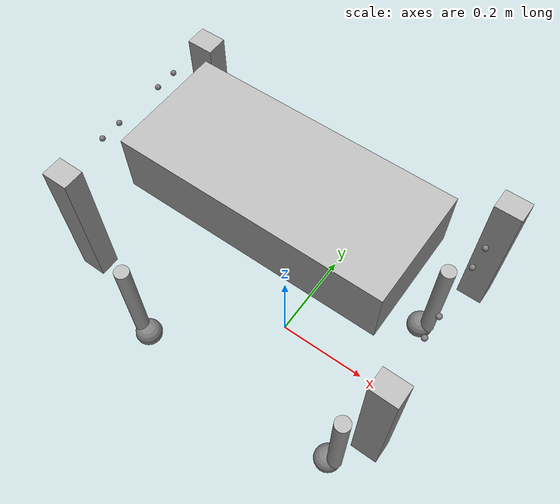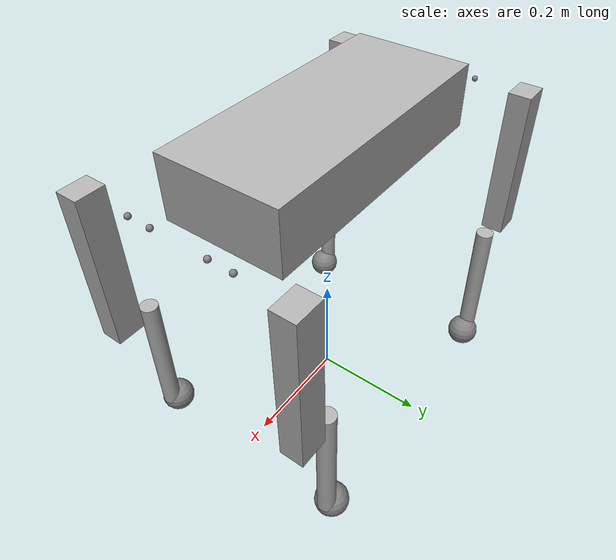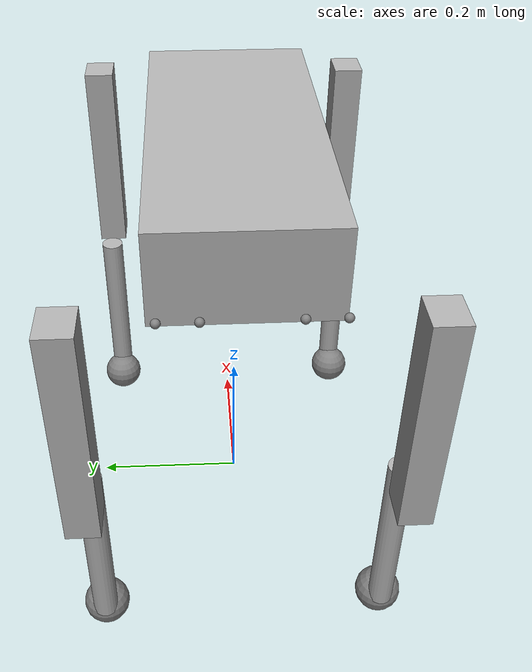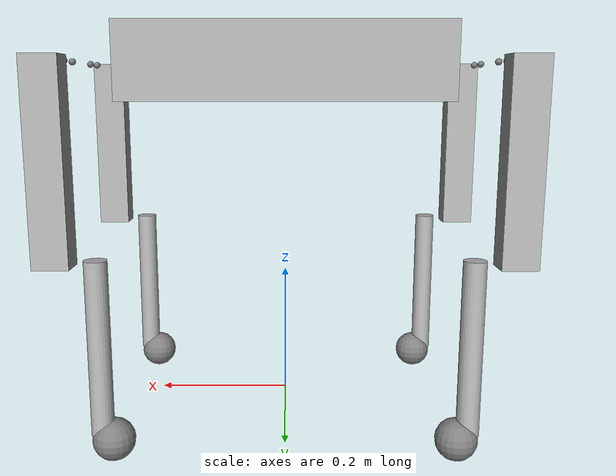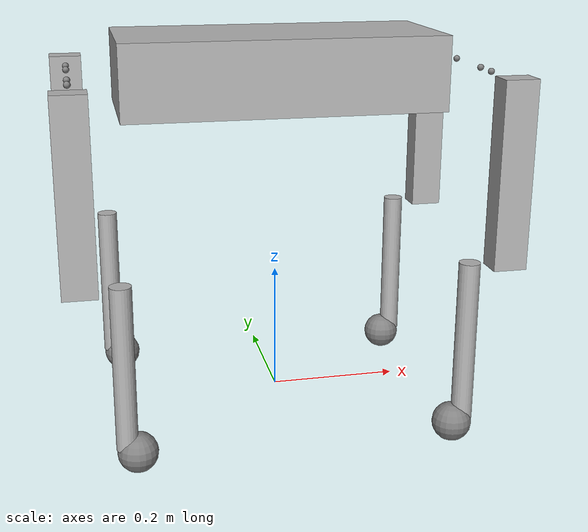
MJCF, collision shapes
<mujoco model="sirius_mid_v3_mix">
    <compiler angle="radian" meshdir="../assets/"/>

    <asset>
        <mesh name="base_link" file="base_link.obj"/>
        <mesh name="difference_fr" file="difference_fr.obj"/>
        <mesh name="thigh_fr" file="thigh_fr.obj"/>
        <mesh name="shank_fr" file="shank_fr.obj"/>
        <mesh name="difference_br" file="difference_br.obj"/>
        <mesh name="thigh_br" file="thigh_br.obj"/>
        <mesh name="shank_br" file="shank_br.obj"/>
        <mesh name="difference_fl" file="difference_fl.obj"/>
        <mesh name="thigh_fl" file="thigh_fl.obj"/>
        <mesh name="shank_fl" file="shank_fl.obj"/>
        <mesh name="difference_bl" file="difference_bl.obj"/>
        <mesh name="thigh_bl" file="thigh_bl.obj"/>
        <mesh name="shank_bl" file="shank_bl.obj"/>
    </asset>

    <default>
        <default class="robot">
            <geom friction="0.6" margin="0.001" condim="1" group="3"/>
            <default class="visual">
                <geom type="mesh" contype="0" conaffinity="0" group="2"/>
            </default>

            <default class="abad">
                <!--                joint range-->
                <joint pos="0 0 0" axis="1 0 0" range="-0.785398 0.785398"/>
                <!--                control position -->
                <motor ctrlrange="-35 35"/>
            </default>
            <default class="hip">
                <joint range="-1.57 1.57"/>
                <motor ctrlrange="-35 35"/>
            </default>
            <default class="knee">
                <joint range="-2.9 2.9"/>
                <!--                output torque range, knees with larger gear ratio-->
                <motor forcerange="-86 86" ctrlrange="-86 86"/>
            </default>

            <default class="knee_f">
                <joint range="-3.15159 1.17453"/>
                <!--                output torque range, knees with larger gear ratio-->
                <motor forcerange="-45 45" ctrlrange="-45 45"/>
            </default>

            <default class="knee_r">
                <joint range="-1.17453 3.15159"/>
                <!--                output torque range, knees with larger gear ratio-->
                <motor forcerange="-45 45" ctrlrange="-45 45"/>
            </default>

            <default class="collision">
                <geom type="capsule"/>
                <default class="ffoot">
                    <geom type="sphere" size="0.03" pos="-0.07 0 -0.252" priority="1" solimp="0.015 1 0.02" condim="6"
                          friction="1.0 0.02 0.01"/>
                </default>
                <default class="hfoot">
                    <geom type="sphere" size="0.03" pos="0.07 0 -0.252" priority="1" solimp="0.015 1 0.02" condim="6"
                          friction="1.0 0.02 0.01"/>
                </default>
            </default>
        </default>
    </default>

    <worldbody>
        <body name="trunk" pos="0 0 0.52" childclass="robot">
            <freejoint/>
            <inertial pos="0.0446334 0.0002693 -0.0071156" mass="12.149" diaginertia="0.048576 0.75312 0.75287"/>
            <geom size="0.241 0.106 0.056" type="box" rgba="0.69804 0.69804 0.69804 1" class='collision'/>
            <geom pos="0 0 0.01" quat="1 0 0 0" rgba="0.807843 0.843137 0.905882 1" mesh="base_link" class="visual" />
            <site name="imu" pos="0 0 0"/>
            <body name="FR_hip" pos="0.31 -0.05 0">
                <inertial pos="-2.74871e-07 -0.00678503 -7.28955e-05" quat="-0.00504962 0.707089 -0.00507879 0.707089" mass="1.83992" diaginertia="0.002488 0.00218033 0.00159669"/>
                <site name="fr_abad_torque_site" pos="0 0 0"/>
                <joint name="FR_hip_joint" pos="0 0 0" axis="1 0 0" range="-0.785398 0.785398" actuatorfrcrange="-35 35"/>
                <geom type="mesh" class='visual' density="0" rgba="0.698039 0.698039 0.698039 1" mesh="difference_fl"/>
                <body name="FR_thigh" pos="0 -0.0415 0">
                    <inertial pos="-7.79362e-06 -0.0767249 -0.0853108" quat="0.997528 -0.0688902 -0.001386 -0.0137925" mass="1.84492" diaginertia="0.0200734 0.019769 0.00221108"/>
                    <site name="fr_hip_torque_site" pos="0 0 0"/>
                    <joint name="FR_thigh_joint" pos="0 0 0" axis="0 1 0" range="-1.57 1.57" actuatorfrcrange="-35 35"/>
                    <geom type="mesh" class='visual' density="0" rgba="0.698039 0.698039 0.698039 1" mesh="thigh_fl"/>
                    <geom size="0.025 0.02 0.14" pos="0 -0.093 -0.135" type="box" rgba="0.698039 0.698039 0.698039 1"/>
                    <body name="FR_calf" pos="0 -0.0931 -0.270123">
                        <inertial pos="-0.041592 -8.92773e-06 -0.12216" quat="0.702889 0.0773604 0.0774288 0.702828" mass="0.523946" diaginertia="0.011804 0.0116286 0.00410657"/>
                        <joint name="FR_calf_joint" pos="0 0 0" axis="0 1 0" range="-3.15159 1.17453" actuatorfrcrange="-45 45"/>
                        <site name="fr_knee_torque_site" pos="0 0 0"/>
                        <geom type="mesh" class='visual' density="0" rgba="0.698039 0.698039 0.698039 1" mesh="shank_fl"/>
                        <geom size="0.016 0.125" pos="-0.055 0 -0.12" type="cylinder" rgba="0.698039 0.698039 0.698039 1"/>
                        <geom name="FR_foot" class="ffoot" />
                        <body name="FR_foot" pos="0.07 0 -0.252" />
                    </body>
                </body>
            </body>

            <body name="FL_hip" pos="0.31 0.05 0">
                <inertial pos="2.76256e-07 0.00678503 -7.2895e-05" quat="0.00507876 0.707089 0.00504962 0.707089" mass="1.83992" diaginertia="0.002488 0.00218033 0.00159669"/>
                <joint name="FL_hip_joint" pos="0 0 0" axis="1 0 0" range="-0.785398 0.785398" actuatorfrcrange="-35 35"/>
                <site name="fl_abad_torque_site" pos="0 0 0"/>
                <geom type="mesh"  density="0" rgba="0.698039 0.698039 0.698039 1" mesh="difference_fr" class = 'visual'/>
                <body name="FL_thigh" pos="0 0.0415 0">
                    <inertial pos="7.8005e-06 0.0767249 -0.0853108" quat="0.997528 0.0688902 0.00138607 -0.0137933" mass="1.84492" diaginertia="0.0200734 0.019769 0.00221108"/>
                    <joint name="FL_thigh_joint" pos="0 0 0" axis="0 1 0" range="-1.57 1.57" actuatorfrcrange="-35 35"/>
                    <site name="fl_hip_torque_site" pos="0 0 0"/>
                    <geom type="mesh"  density="0" rgba="0.698039 0.698039 0.698039 1" mesh="thigh_fr" class = 'visual'/>
                    <geom size="0.025 0.02 0.14" pos="0 0.093 -0.135" type="box" rgba="0.698039 0.698039 0.698039 1" class='collision'/>
                    <body name="FL_calf" pos="0 0.0931 -0.270123">
                        <inertial pos="-0.041592 -8.92773e-06 -0.12216" quat="0.702889 0.0773604 0.0774288 0.702828" mass="0.523946" diaginertia="0.011804 0.0116286 0.00410657"/>
                        <joint name="FL_calf_joint" pos="0 0 0" axis="0 1 0" range="-3.15159 1.17453" actuatorfrcrange="-45 45"/>
                        <site name="fl_knee_torque_site" pos="0 0 0"/>
                        <geom type="mesh"  density="0" rgba="0.698039 0.698039 0.698039 1" mesh="shank_fr" class = 'visual'/>
                        <geom size="0.016 0.125" pos="-0.055 0 -0.12" type="cylinder" rgba="0.698039 0.698039 0.698039 1" class='collision'/>
                        <geom name="FL_foot" class="ffoot" />
                        <body name="FL_foot" pos="0.07 0 -0.252" />
                    </body>
                </body>
            </body>

            <body name="RR_hip" pos="-0.31 -0.05 0">
                <inertial pos="2.76256e-07 0.00678503 -7.2895e-05" quat="0.00507876 0.707089 0.00504962 0.707089" mass="1.83992" diaginertia="0.002488 0.00218033 0.00159669"/>
                <joint name="RR_hip_joint" pos="0 0 0" axis="1 0 0" range="-0.785398 0.785398" actuatorfrcrange="-35 35"/>
                <site name="rr_abad_torque_site" pos="0 0 0"/>
                <geom type="mesh" class='visual' density="0" rgba="1 1 1 1" mesh="difference_bl"/>
                <body name="RR_thigh" pos="0 -0.0415 0">
                    <inertial pos="-7.79362e-06 -0.0767249 -0.0853108" quat="0.997528 -0.0688902 -0.001386 -0.0137925" mass="1.84492" diaginertia="0.0200734 0.019769 0.00221108"/>
                    <joint name="RR_thigh_joint" pos="0 0 0" axis="0 1 0" range="-1.57 1.57" actuatorfrcrange="-35 35"/>
                    <site name="rr_hip_torque_site" pos="0 0 0"/>
                    <geom type="mesh" class='visual' density="0" rgba="0.698039 0.698039 0.698039 1" mesh="thigh_bl"/>
                    <geom size="0.025 0.02 0.14" pos="0 -0.093 -0.135" type="box" rgba="0.698039 0.698039 0.698039 1"/>
                    <body name="RR_calf" pos="0 -0.0931 -0.270123">
                        <inertial pos="0.041592 8.92773e-06 -0.12216" quat="0.702889 -0.0773604 -0.0774288 0.702828" mass="0.523946" diaginertia="0.011804 0.0116286 0.00410657"/>
                        <joint name="RR_calf_joint" pos="0 0 0" axis="0 1 0" range="-1.17453 3.15159" actuatorfrcrange="-45 45"/>
                        <site name="rr_knee_torque_site" pos="0 0 0"/>
                        <geom type="mesh" class='visual' density="0" rgba="0.698039 0.698039 0.698039 1" mesh="shank_bl"/>
                        <geom size="0.016 0.125" pos="0.055 0 -0.12" type="cylinder" rgba="0.698039 0.698039 0.698039 1"/>
                        <geom name="RR_foot" class="hfoot" />
                        <body name="RR_foot" pos="0.07 0 -0.252" />
                    </body>
                </body>
            </body>

            <body name="RL_hip" pos="-0.31 0.05 0">
                <inertial pos="2.76256e-07 0.00678503 -7.2895e-05" quat="0.00507876 0.707089 0.00504962 0.707089" mass="1.83992" diaginertia="0.002488 0.00218033 0.00159669"/>
                <joint name="RL_hip_joint" pos="0 0 0" axis="1 0 0" range="-0.785398 0.785398" actuatorfrcrange="-35 35"/>
                <site name="rl_abad_torque_site" pos="0 0 0"/>
                <geom type="mesh" class='visual' density="0" rgba="0.698039 0.698039 0.698039 1" mesh="difference_br"/>
                <body name="RL_thigh" pos="0 0.0415 0">
                    <inertial pos="7.8005e-06 0.0767249 -0.0853108" quat="0.997528 0.0688902 0.00138607 -0.0137933" mass="1.84492" diaginertia="0.0200734 0.019769 0.00221108"/>
                    <joint name="RL_thigh_joint" pos="0 0 0" axis="0 1 0" range="-1.57 1.57" actuatorfrcrange="-35 35"/>
                    <site name="rl_hip_torque_site" pos="0 0 0"/>
                    <geom type="mesh" class='visual' density="0" rgba="0.698039 0.698039 0.698039 1" mesh="thigh_br"/>
                    <geom size="0.025 0.02 0.14" pos="0 0.093 -0.135" type="box" rgba="0.698039 0.698039 0.698039 1"/>
                    <body name="RL_calf" pos="0 0.0931 -0.270123">
                        <inertial pos="0.041592 8.92773e-06 -0.12216" quat="0.702889 -0.0773604 -0.0774288 0.702828" mass="0.523946" diaginertia="0.011804 0.0116286 0.00410657"/>
                        <joint name="RL_calf_joint" pos="0 0 0" axis="0 1 0" range="-1.17453 3.15159" actuatorfrcrange="-45 45"/>
                        <site name="rl_knee_torque_site" pos="0 0 0"/>
                        <geom type="mesh" class='visual' density="0" rgba="0.698039 0.698039 0.698039 1" mesh="shank_br"/>
                        <geom size="0.016 0.125" pos="0.055 0 -0.12" type="cylinder" rgba="0.698039 0.698039 0.698039 1" />
                        <geom name="RL_foot" class="hfoot" />
                        <body name="RL_foot" pos="0.07 0 -0.252" />
                    </body>
                </body>
            </body>

        </body>
    </worldbody>

    <actuator>
        <motor class="abad" name="FR_hip_joint" joint="FR_hip_joint" />
        <motor class="hip" name="FR_thigh_joint" joint="FR_thigh_joint" />
        <motor class="knee" name="FR_calf_joint" joint="FR_calf_joint" />
        <motor class="abad" name="FL_hip_joint" joint="FL_hip_joint" />
        <motor class="hip" name="FL_thigh_joint" joint="FL_thigh_joint" />
        <motor class="knee" name="FL_calf_joint" joint="FL_calf_joint" />
        <motor class="abad" name="RR_hip_joint" joint="RR_hip_joint" />
        <motor class="hip" name="RR_thigh_joint" joint="RR_thigh_joint" />
        <motor class="knee" name="RR_calf_joint" joint="RR_calf_joint" />
        <motor class="abad" name="RL_hip_joint" joint="RL_hip_joint" />
        <motor class="hip" name="RL_thigh_joint" joint="RL_thigh_joint" />
        <motor class="knee" name="RL_calf_joint" joint="RL_calf_joint" />
    </actuator>

    <sensor>
        <gyro name="imu_gyro" site="imu"/>
        <framequat name="imu_quat" objtype="site" objname="imu"/>
        <accelerometer name="imu_acc" site="imu"/>

        <jointpos name="FR_hip_pos" joint="FR_hip_joint" />
        <jointpos name="FR_thigh_pos" joint="FR_thigh_joint" />
        <jointpos name="FR_calf_pos" joint="FR_calf_joint" />
        <jointpos name="FL_hip_pos" joint="FL_hip_joint" />
        <jointpos name="FL_thigh_pos" joint="FL_thigh_joint" />
        <jointpos name="FL_calf_pos" joint="FL_calf_joint" />
        <jointpos name="RR_hip_pos" joint="RR_hip_joint" />
        <jointpos name="RR_thigh_pos" joint="RR_thigh_joint" />
        <jointpos name="RR_calf_pos" joint="RR_calf_joint" />
        <jointpos name="RL_hip_pos" joint="RL_hip_joint" />
        <jointpos name="RL_thigh_pos" joint="RL_thigh_joint" />
        <jointpos name="RL_calf_pos" joint="RL_calf_joint" />

        <jointvel name="FR_hip_vel" joint="FR_hip_joint" />
        <jointvel name="FR_thigh_vel" joint="FR_thigh_joint" />
        <jointvel name="FR_calf_vel" joint="FR_calf_joint" />
        <jointvel name="FL_hip_vel" joint="FL_hip_joint" />
        <jointvel name="FL_thigh_vel" joint="FL_thigh_joint" />
        <jointvel name="FL_calf_vel" joint="FL_calf_joint" />
        <jointvel name="RR_hip_vel" joint="RR_hip_joint" />
        <jointvel name="RR_thigh_vel" joint="RR_thigh_joint" />
        <jointvel name="RR_calf_vel" joint="RR_calf_joint" />
        <jointvel name="RL_hip_vel" joint="RL_hip_joint" />
        <jointvel name="RL_thigh_vel" joint="RL_thigh_joint" />
        <jointvel name="RL_calf_vel" joint="RL_calf_joint" />

        <torque name="FR_hip_torque" site="fr_abad_torque_site"/>
        <torque name="FR_thigh_torque" site="fr_hip_torque_site"/>
        <torque name="FR_calf_torque" site="fr_knee_torque_site"/>

        <torque name="FL_hip_torque" site="fl_abad_torque_site"/>
        <torque name="FL_thigh_torque" site="fl_hip_torque_site"/>
        <torque name="FL_calf_torque" site="fl_knee_torque_site"/>

        <torque name="RR_hip_torque" site="rr_abad_torque_site"/>
        <torque name="RR_thigh_torque" site="rr_hip_torque_site"/>
        <torque name="RR_calf_torque" site="rr_knee_torque_site"/>

        <torque name="RL_hip_torque" site="rl_abad_torque_site"/>
        <torque name="RL_thigh_torque" site="rl_hip_torque_site"/>
        <torque name="RL_calf_torque" site="rl_knee_torque_site"/>
    </sensor>

    <keyframe>
        <key name="init_pose"
             qpos="0 0 0.5 1 0 0 0 0.0 1.57086 -2.9 0 1.57086 -2.9 -0.0 -1.57086 2.9 0.0 -1.57086 2.9"/>
    </keyframe>
</mujoco>
